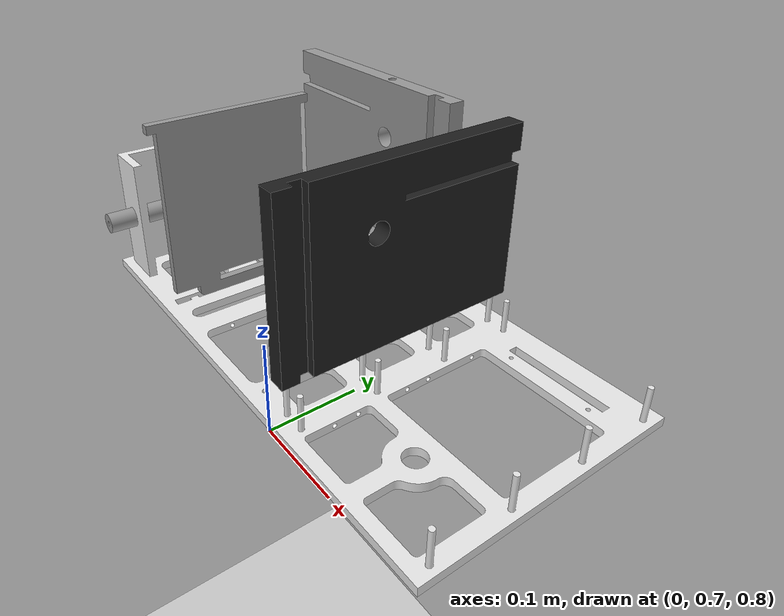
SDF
<?xml version="1.0"?>
<sdf version="1.4">
	<!-- We use a custom world to change the camera angle -->
	<world name="default">
    <include>
      <uri>model://ground_plane</uri>
    </include>
    <!-- Global light source -->
    <include>
      <uri>model://sun</uri>
    </include>
    <!-- Dexterity test model -->
    <include>
			<pose>-0.385 0.7 0.8 0 0 0</pose>
			<uri>model://dexterity_test</uri>
		</include>
    <!-- Focus camera on the setup -->
    <gui fullscreen='0'>
      <camera name='user_camera'>
        <pose>-0.859774 1.10484 1.65432 -3.65255e-17 0.707643 -0.735002</pose>
        <view_controller>orbit</view_controller>
      </camera>
    </gui>
  </world>
</sdf>

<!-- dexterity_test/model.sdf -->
<!--
shaft:  3.2 N
slide:  1.26 N
plate:  7.01 N
back:   10.2 N
left:   28.25 N
right:  28.4 N
-->
<sdf version="1.4">
	<model name="dexterity_test">
		<!-- Custom plugin -->
    <plugin name="dexterity_test_plugin" filename="libdexterity_test_plugin.so">
				<wall_anchor_1>	0.165 	0.29 		0.15 		0 0 0</wall_anchor_1>
				<wall_anchor_2>	0.385 	0.155 	0.15 		0 0 0</wall_anchor_2>
				<wall_anchor_3>	0.41 		0.155 	0.15 		0 0 0</wall_anchor_3>
				<wall_anchor_4>	0.59 		0.155 	0.15 		0 0 0</wall_anchor_4>
				<back_anchor_1>	0.1395 	0.1055 	0.024 	0 0 0</back_anchor_1>
				<back_anchor_2>	0.5005 	0.2735	0.024		0 0 0</back_anchor_2>
				<shaft_anchor_1>0.039 	-0.02 	0.085 	0 0 0</shaft_anchor_1>
				<shaft_anchor_2>0.039 	-0.02 	0.085 	0 0 0</shaft_anchor_2>
		</plugin>
		<!-- base link | Density: 3120 -->
		<link name="base_link">
			<pose>0 0 0 0 0 0</pose>
			<visual name="visual">
				<geometry>
					<mesh>
						<uri>model://dexterity_test/meshes/base.dae</uri>
					</mesh>
				</geometry>
				<material>
					<script>
						<uri>file://media/materials/scripts/gazebo.material</uri>
						<name>Gazebo/White</name>
					</script>
				</material>
			</visual>
			<collision name="collision">
				<geometry>
					<mesh>
						<uri>model://dexterity_test/meshes/base.dae</uri>
					</mesh>
				</geometry>
				<surface>
					<friction>
						<ode>
							<mu>100</mu>
							<mu2>50</mu2>
						</ode>
          </friction>
				</surface>
			</collision>
			<inertial>
				<mass>4.307</mass>
				<pose>0.206 0.142 0.028 0 0 0</pose>
				<inertia>
					<ixx>0.045</ixx>        <ixy>-0.016</ixy>        <ixz>0.017</ixz>
					<iyy>0.166</iyy>        <iyz>0.004</iyz>
					<izz>0.196</izz>
				</inertia>
			</inertial>
		</link>
		<!-- shaft link | Density: 3120  -->
		<link name="shaft">
			<self_collide>false</self_collide>
			<pose>0.039 -0.02 0.085 0 0 0</pose>
			<visual name="visual">
				<geometry>
					<mesh>
						<uri>model://dexterity_test/meshes/shaft.dae</uri>
					</mesh>
				</geometry>
				<material>
					<script>
						<name>Gazebo/Grey</name>
					</script>
				</material>
			</visual>
			<collision name="collision">
				<geometry>
					<mesh>
						<uri>model://dexterity_test/meshes/shaft.dae</uri>
					</mesh>
				</geometry>
			</collision>
			<inertial>
				<mass>0.326</mass>
				<pose>0 0.12 0 0 0 0</pose>
				<inertia>
					<ixx>0.002</ixx>
					<iyy>2.3e-5</iyy>
					<izz>0.002</izz>
				</inertia>
			</inertial>
		</link>
		<!-- left link | Density: 2660 -->
		<link name="left">
			<pose>0.165 0.29 0.15 0 0 0</pose>
			<visual name="visual">
				<geometry>
					<mesh>
						<uri>model://dexterity_test/meshes/left_wall.dae</uri>
					</mesh>
				</geometry>
				<material>
					<script>
						<name>Gazebo/Grey</name>
					</script>
				</material>
			</visual>
			<collision name="collision">
				<geometry>
					<mesh>
						<uri>model://dexterity_test/meshes/left_wall.dae</uri>
					</mesh>
				</geometry>
			</collision>
			<inertial>
				<mass>2.881</mass>
				<pose>-2.264e-3 0.242e-3 -1.172e-3 0 0 0</pose>
				<inertia>
					<ixx>0.01</ixx>		<ixy>-2.752e-5</ixy>		<ixz>-1.967e-4</ixz>
					<iyy>0.029</iyy>	<iyz>-1.952e-5</iyz>
					<izz>0.02</izz>
				</inertia>
			</inertial>
		</link>
		<!-- right link | Density: 2660 -->
		<link name="right">
			<pose>0.385 0.155 0.15 0 0 0</pose>
			<visual name="visual">
				<geometry>
					<mesh>
						<uri>model://dexterity_test/meshes/right_wall.dae</uri>
					</mesh>
				</geometry>
				<material>
					<script>
						<name>Gazebo/FlatBlack</name>
					</script>
				</material>
			</visual>
			<collision name="collision">
				<geometry>
					<mesh>
						<uri>model://dexterity_test/meshes/right_wall.dae</uri>
					</mesh>
				</geometry>
				<max_contacts>10</max_contacts>
				<surface>
          <friction>
            <ode>
              <mu>1.1</mu>
              <mu2>1.1</mu2>
              <fdir1>0 0 1</fdir1>
              <slip1>0.0</slip1>
              <slip2>0.0</slip2>
            </ode>
          </friction>
          <bounce>
            <restitution_coefficient>0.1</restitution_coefficient>
            <threshold>100000.0</threshold>
          </bounce>
          <contact>
            <ode>
              <soft_cfm>0.1</soft_cfm>
              <soft_erp>0.2</soft_erp>
              <kp>1e4</kp>
              <kd>10.0</kd>
              <max_vel>0.0</max_vel>
              <min_depth>0.001</min_depth>
            </ode>
          </contact>
        </surface>
			</collision>
			<inertial>
				<mass>2.893</mass>
				<pose>-2.414e-4 0.002 -8.704e-4 0 0 0</pose>
				<inertia>
					<ixx>0.029</ixx>	<ixy>-2.741e-5</ixy>		<ixz>1.931e-5</ixz>
					<iyy>0.01</iyy>		<iyz>2.291e-4</iyz>
					<izz>0.02</izz>
				</inertia>
			</inertial>
		</link>
		<!-- back link | Density: 2660 -->
		<link name="back">
			<pose>0.1395 0.1055 0.024 0 0 0</pose>
			<visual name="visual">
				<geometry>
					<mesh>
						<uri>model://dexterity_test/meshes/back_wall.dae</uri>
					</mesh>
				</geometry>
				<material>
					<script>
						<name>Gazebo/Grey</name>
					</script>
				</material>
			</visual>
			<collision name="collision">
				<geometry>
					<mesh>
						<uri>model://dexterity_test/meshes/back_wall.dae</uri>
					</mesh>
				</geometry>
			</collision>
			<inertial>
				<mass>1.053</mass>
				<pose>0 0 0.101 0 0 0</pose>
				<inertia>
					<ixx>0.007</ixx>
					<iyy>0.004</iyy>
					<izz>0.003</izz>
				</inertia>
			</inertial>
		</link>
		<joint name="anchor" type="revolute">
			<pose>0.3 0.155 0 0 0 0</pose>
			<parent>world</parent>
			<child>base_link</child>
			<axis>
				<xyz>0 0 1</xyz>
					<limit>
						<lower>0</lower>	<upper>0</upper>
					</limit>
			</axis>
		</joint>
		<!-- Initial joints for the elements -->
		<joint name="shaft_joint" type="prismatic">
			<pose>0 0.125 0 0 0 0</pose>
			<parent>base_link</parent>
			<child>shaft</child>
			<axis>
				<xyz>0 1 0</xyz>
					<limit>
						<lower>0</lower>	<upper>0</upper>
					</limit>
			</axis>
		</joint>
		<joint name="left_joint" type="prismatic">
			<pose>0 0 0 0 0 0</pose>
			<parent>base_link</parent>
			<child>left</child>
			<axis>
				<xyz>0 0 1</xyz>
					<limit>
						<lower>-0.04</lower>	<upper>0.015</upper>
					</limit>
			</axis>
		</joint>
		<joint name="right_joint" type="prismatic">
			<pose>0 0 0 0 0 0</pose>
			<parent>base_link</parent>
			<child>right</child>
			<axis>
				<xyz>0 0 1</xyz>
					<limit>
						<lower>-0.04</lower>	<upper>0.015</upper>
					</limit>
			</axis>
		</joint>
		<joint name="back_joint" type="prismatic">
			<pose>0 0 0 0 0 0</pose>
			<parent>base_link</parent>
			<child>back</child>
			<axis>
				<xyz>0 0 1</xyz>
					<limit>
						<lower>-0.024</lower>	<upper>0.015</upper>
					</limit>
			</axis>
		</joint>
	</model>
</sdf>
